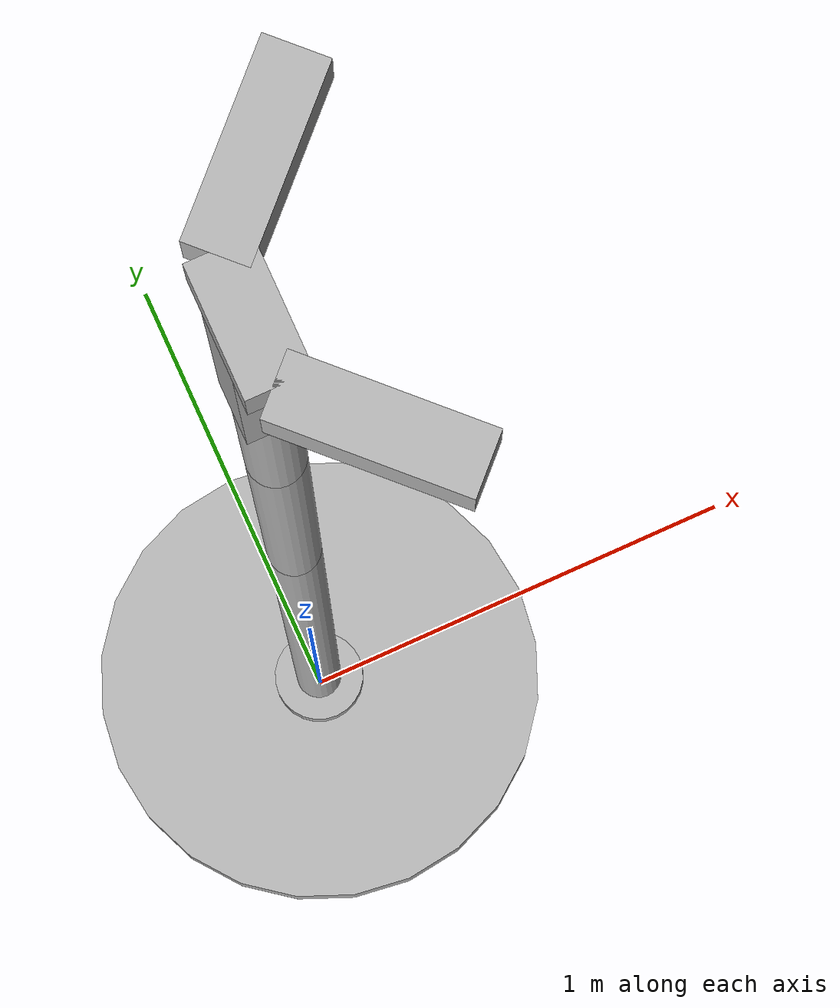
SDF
<?xml version='1.0'?>
<sdf version='1.4'>
    <model name="my_robot">
        <static>false</static>
        <self_collide>1</self_collide>

        <!-- CHASIS -->
        <link name='chassis'>
            <pose>0 0 .05 0 0 0</pose>
            <inertial>
                <mass>80.0</mass>
            </inertial>
            <collision name='collision'>
                <geometry>
                    <cylinder>
                        <radius>.5</radius>
                        <length>.1</length>
                    </cylinder>
                </geometry>
            </collision>

            <visual name='visual'>
                <geometry>
                    <cylinder>
                        <radius>.5</radius>
                        <length>.1</length>
                    </cylinder>
                </geometry>
            </visual>
        </link>

        <!-- ARM ONE -->
        <link name='arm1'>
            <pose>0 0 .125 0 0 0</pose>
            <gravity>0</gravity>
            <collision name='collision'>
                <geometry>
                    <cylinder>
                        <radius>.1</radius>
                        <length>.05</length>
                    </cylinder>
                </geometry>
            </collision>

            <visual name='visual'>
                <geometry>
                    <cylinder>
                        <radius>.1</radius>
                        <length>.05</length>
                    </cylinder>
                </geometry>
            </visual>
        </link>

        <!-- ARM TWO -->
        <link name='arm2'>
            <pose>0 0 1.15 0 0 0</pose>
            <inertial>
                <mass>10.0</mass>
            </inertial>
            <gravity>0</gravity>
            <collision name='collision'>
                <geometry>
                    <cylinder>
                        <radius>.05</radius>
                        <length>2.0</length>
                    </cylinder>
                </geometry>
            </collision>

            <visual name='visual'>
                <geometry>
                    <cylinder>
                        <radius>.05</radius>
                        <length>2.0</length>
                    </cylinder>
                </geometry>
            </visual>
        </link>

        <!-- ARM THREE -->
        <link name='arm3'>
            <pose>0 0 2.65 0 0 0</pose>
            <gravity>0</gravity>
            <collision name='collision'>
                <geometry>
                    <cylinder>
                        <radius>.05</radius>
                        <length>1.0</length>
                    </cylinder>
                </geometry>
            </collision>

            <visual name='visual'>
                <geometry>
                    <cylinder>
                        <radius>.05</radius>
                        <length>1.0</length>
                    </cylinder>
                </geometry>
            </visual>
        </link>

        <!-- ARM FOUR -->
        <link name='arm4'>
            <pose>0 0 3.4 0 0 0</pose>
            <gravity>0</gravity>
            <collision name='collision'>
                <geometry>
                    <cylinder>
                        <radius>.05</radius>
                        <length>0.5</length>
                    </cylinder>
                </geometry>
            </collision>

            <visual name='visual'>
                <geometry>
                    <cylinder>
                        <radius>.05</radius>
                        <length>0.5</length>
                    </cylinder>
                </geometry>
            </visual>
        </link>

        <!-- ARM 5 -->
        <link name="arm5">
            <pose> 0 0 3.9 0 0 0</pose>
            <inertial>
                <pose>0 0 -0.5 0 0 0</pose>
                <inertia>
                    <ixx>0.01</ixx>
                    <ixy>0</ixy>
                    <ixz>0</ixz>
                    <iyy>0.01</iyy>
                    <iyz>0</iyz>
                    <izz>0.01</izz>
                </inertia>
                <mass>1</mass>
            </inertial>
            <gravity>0</gravity>
            <collision name="collision">
                <geometry>
                    <box>
                        <size>0.1 0.1 0.5</size>
                    </box>
                </geometry>
            </collision>
            <visual name="visual">
                <geometry>
                    <box>
                        <size>0.1 0.1 0.5</size>
                    </box>
                </geometry>
            </visual>
        </link>

        <!-- PALM -->
        <link name="palm">
            <pose>0.0 0.0 4.2 0 0 0</pose>
            <inertial>
                <inertia>
                    <ixx>0.01</ixx>
                    <ixy>0</ixy>
                    <ixz>0</ixz>
                    <iyy>0.01</iyy>
                    <iyz>0</iyz>
                    <izz>0.01</izz>
                </inertia>
                <mass>0.5</mass>
            </inertial>
            <gravity>0</gravity>
            <collision name="collision">
                <geometry>
                    <box>
                        <size>0.1 0.2 0.1</size>
                    </box>
                </geometry>
            </collision>
            <visual name="visual">
                <geometry>
                    <box>
                        <size>0.1 0.2 0.1</size>
                    </box>
                </geometry>
                <material>
                    <script>Gazebo/Red</script>
                </material>
            </visual>
        </link>

        <!-- left finger -->
        <link name="left_finger">
            <pose>0.1 0.2 4.2 0 0 -0.78539</pose>
            <inertial>
                <inertia>
                    <ixx>0.01</ixx>
                    <ixy>0</ixy>
                    <ixz>0</ixz>
                    <iyy>0.01</iyy>
                    <iyz>0</iyz>
                    <izz>0.01</izz>
                </inertia>
                <mass>0.1</mass>
            </inertial>
            <gravity>0</gravity>
            <collision name="collision">
                <geometry>
                    <box>
                        <size>0.1 0.3 0.1</size>
                    </box>
                </geometry>
            </collision>
            <visual name="visual">
                <geometry>
                    <box>
                        <size>0.1 0.3 0.1</size>
                    </box>
                </geometry>
                <material>
                    <script>Gazebo/Blue</script>
                </material>
            </visual>
        </link>

        <!-- RIGHT FINGER -->
        <link name="right_finger">
            <pose>0.1 -0.2 4.2 0 0 .78539</pose>
            <inertial>
                <inertia>
                    <ixx>0.01</ixx>
                    <ixy>0</ixy>
                    <ixz>0</ixz>
                    <iyy>0.01</iyy>
                    <iyz>0</iyz>
                    <izz>0.01</izz>
                </inertia>
                <mass>0.1</mass>
            </inertial>
            <gravity>0</gravity>
            <collision name="collision">
                <geometry>
                    <box>
                        <size>0.1 0.3 0.1</size>
                    </box>
                </geometry>
            </collision>
            <visual name="visual">
                <geometry>
                    <box>
                        <size>0.1 0.3 0.1</size>
                    </box>
                </geometry>
                <material>
                    <script>Gazebo/Green</script>
                </material>
            </visual>
        </link>

        <!-- JOINT - CHASIS_ARM1_JOINT -->
        <joint type="revolute" name="chasis_arm1_joint">
            <pose>0 0 -0.025 0 0 0</pose>
            <child>arm1</child>
            <parent>chassis</parent>
            <axis>
                <lower>-0.4</lower>
                <upper>0.4</upper>
                <xyz>0 0 1</xyz>
            </axis>
        </joint>

        <!-- JOINT - ARM1_ARM_2_JOINT -->
         <joint type="revolute" name="arm1_arm2_joint">
            <pose>0 0 -1 0 0 0</pose>
            <child>arm2</child>
            <parent>arm1</parent>
            <axis>
                <xyz>1 0 0</xyz>
            </axis>
        </joint>

        <!-- JOINT - ARM2_ARM3_JOINT -->
        <joint type="revolute" name="arm2_arm3_joint">
            <pose>0 0 -0.5 0 0 0</pose>
            <child>arm3</child>
            <parent>arm2</parent>
            <axis>
                <xyz>1 0 0</xyz>
            </axis>
        </joint>
        <!-- JOINT - ARM3_ARM4_JOINT -->
        <joint type="revolute" name="arm3_arm4_joint">
            <pose>0 0 -0.25 0 0 0</pose>
            <child>arm4</child>
            <parent>arm3</parent>
            <axis>
                <xyz>1 0 0</xyz>
            </axis>
        </joint>

        <!-- JOINT - ARM4_ARM5_JOINT -->
        <joint type="revolute" name="arm4_arm5_joint">
            <pose>0 0 -0.25 0 0 0</pose>
            <child>arm5</child>
            <parent>arm4</parent>
            <axis>
                <xyz>0 1 0</xyz>
            </axis>
        </joint>

        <!-- JOINT - ARM5_PALM_JOINT -->
        <joint name="arm5_palm_joint" type="revolute">
            <parent>arm5</parent>
            <child>palm</child>
            <pose>0 0 -0.05 0 0 0</pose>
            <axis>
                <dynamics>
                    <damping>1.0</damping>
                    <friction>.3</friction>
                    <limit>
                        <lower>-1.0</lower>
                        <upper>1.0</upper>
                        <effort>40</effort>
                        <velocity>1.0</velocity>
                    </limit>
                </dynamics>
            <xyz>0 0 1</xyz>
            </axis>
        </joint>

        <joint name="palm_left_finger" type="revolute">
            <pose>0 -0.15 0 0 0 0</pose>
            <child>left_finger</child>
            <parent>palm</parent>
            <axis>
                <limit>
                    <lower>-0.4</lower>
                    <upper>0.4</upper>
                </limit>
                <xyz>0 0 1</xyz>
            </axis>
        </joint>
        <joint name="left_finger_tip" type="revolute">
            <pose>0 0.1 0 0 0 0</pose>
            <child>left_finger_tip</child>
            <parent>left_finger</parent>
            <axis>
                <limit>
                    <lower>-0.4</lower>
                    <upper>0.4</upper>
                </limit>
                <xyz>0 0 1</xyz>
            </axis>
        </joint>
        <joint name="palm_right_finger" type="revolute">
            <pose>0 0.15 0 0 0 0</pose>
            <child>right_finger</child>
            <parent>palm</parent>
            <axis>
                <limit>
                    <lower>-0.4</lower>
                    <upper>0.4</upper>
                </limit>
                <xyz>0 0 1</xyz>
            </axis>
        </joint>
        <joint name="right_finger_tip" type="revolute">
            <pose>0 0.1 0 0 0 0</pose>
            <child>right_finger_tip</child>
            <parent>right_finger</parent>
            <axis>
                <limit>
                    <lower>-0.4</lower>
                    <upper>0.4</upper>
                </limit>
                <xyz>0 0 1</xyz>
            </axis>
        </joint>
        <joint name="palm_riser" type="prismatic">
            <child>palm</child>
            <parent>riser</parent>
            <axis>
                <limit>
                    <lower>0</lower>
                    <upper>0.9</upper>
                </limit>
                <xyz>0 0 1</xyz>
            </axis>
        </joint>

        <plugin name="arm_control" filename="libcontroller.so" />

    </model>
</sdf>
